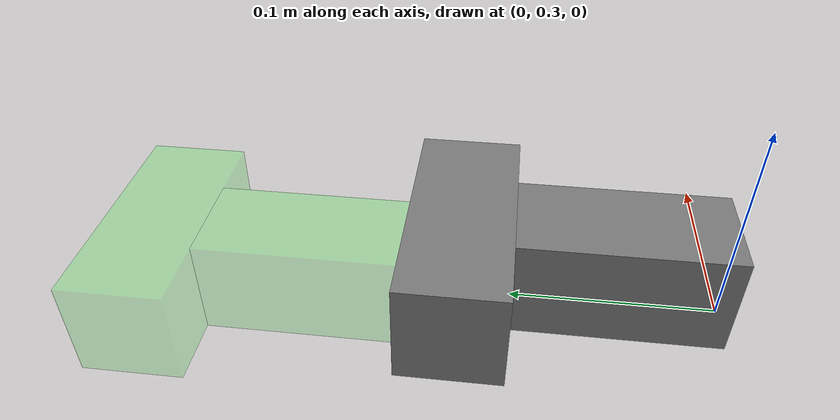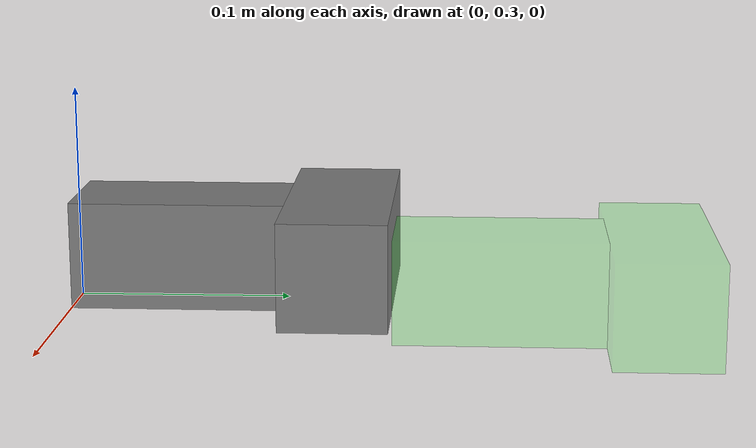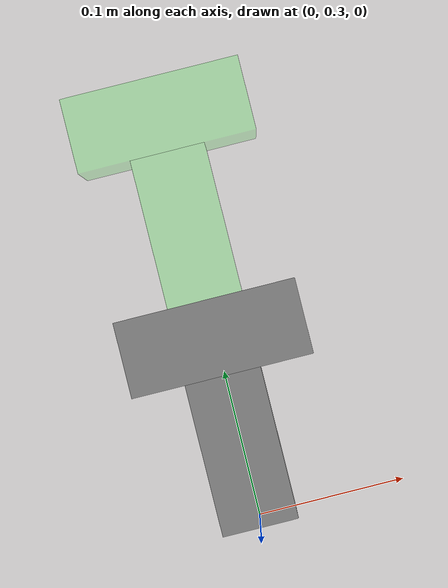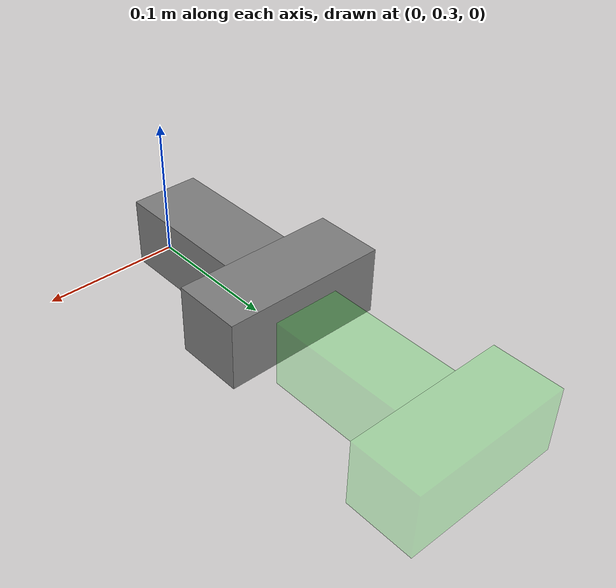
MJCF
<mujoco model="pusht">
  <option timestep="0.01" iterations="1" ls_iterations="4" />

  <default>
    <velocity ctrllimited="true" ctrlrange="-1.0 1.0" kv="0.1"/>
    <default class="goal">
      <geom conaffinity="0" contype="0" rgba="0 1 0 0.2"/>
    </default>
    <geom friction="1.0" solimp="0.0 0.95 0.005" solref="0.02 1"/>
  </default>

  <worldbody>
    <camera name='top_view' pos="-0.276 -0.512 0.817" xyaxes="0.864 -0.503 0.000 0.404 0.694 0.596"/>

    <body name="goal" mocap="true" pos="0.0 0.5 0.009">
      <geom class="goal" name="goal_bottom" type="box" size=".025 0.05 0.025"/>
      <geom class="goal" name="goal_top" type="box" size=".06 0.025 0.025" pos="0.0 0.075 0.0"/>
    </body>

    <body name="block" pos="0.0 0.35 0.025">
      <joint name="T_x" type="slide" pos="0 0 0" axis="1 0 0" />
      <joint name="T_y" type="slide" pos="0 0 0" axis="0 1 0" />
      <joint name="T_z" axis="0 0 1"/>
      <geom name="bottom" type="box" size=".025 0.05 0.025" />
      <geom name="top" type="box" size=".06 0.025 0.025" pos="0.0 0.075 0.0" />
    </body>

  </worldbody>

  <sensor>
    <framepos name="position" objtype="body" objname="block" reftype="body" refname="goal"/>
    <framequat name="orientation" objtype="body" objname="block" reftype="body" refname="goal"/>

    <framepos name="position_world" objtype="body" objname="block" reftype="body" refname="world"/>
  </sensor>
</mujoco>
